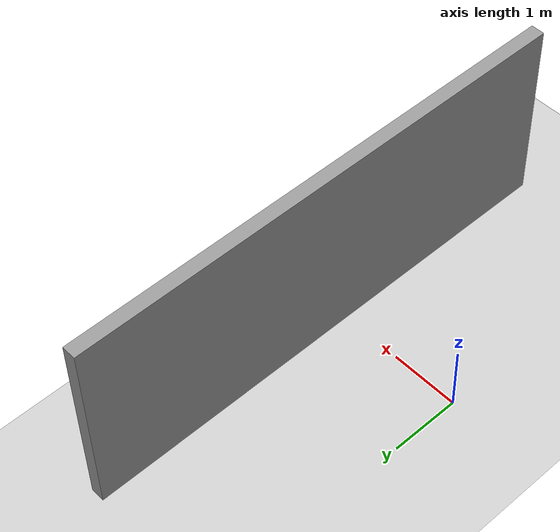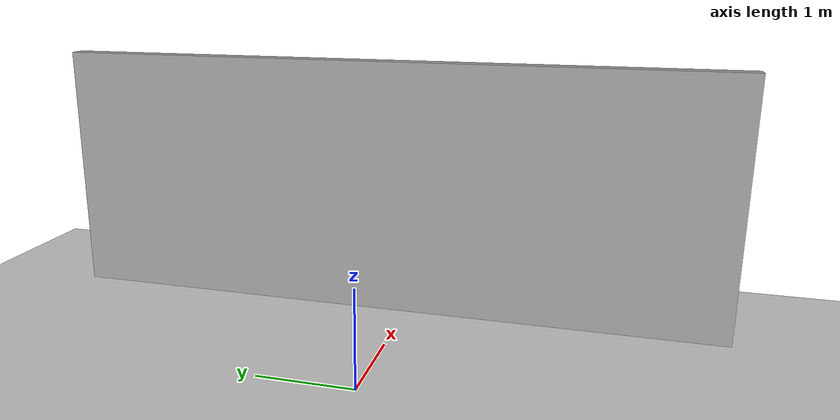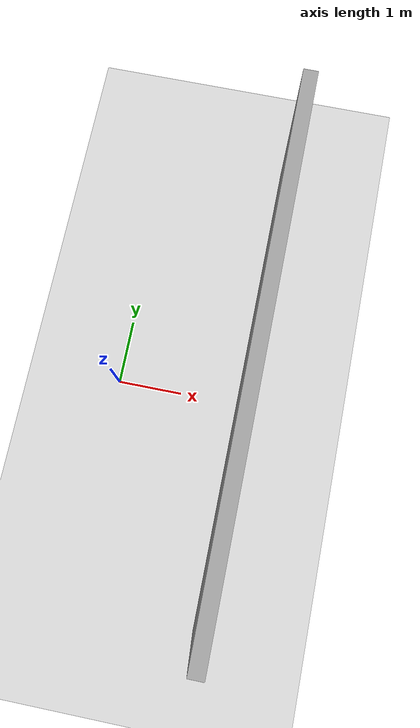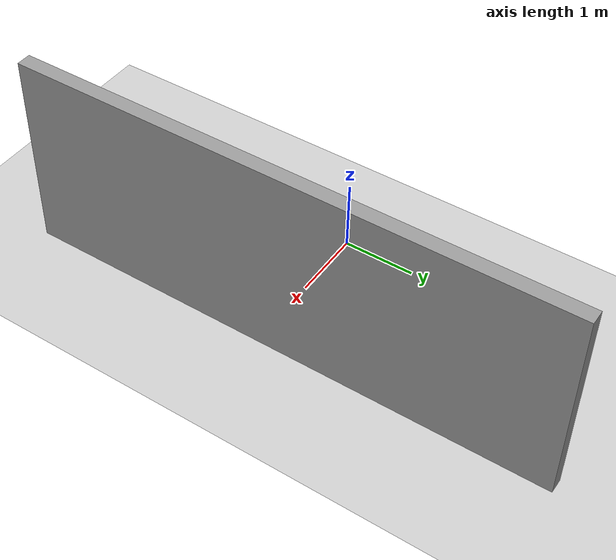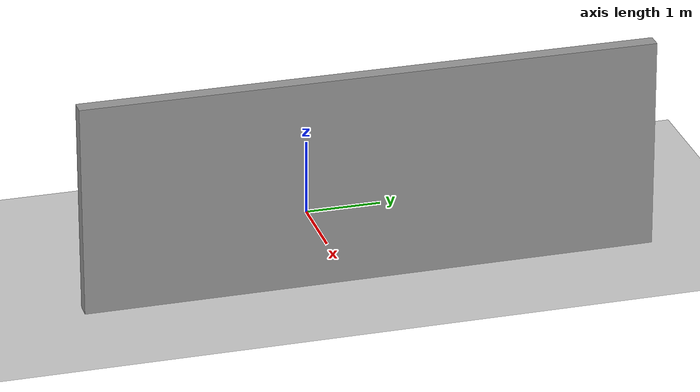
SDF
<?xml version="1.0" ?>
<sdf version="1.5">
  <world name="default">
    <!-- A global light source -->
    <include>
      <uri>model://sun</uri>
    </include>
    <!-- A ground plane -->
    <include>
      <uri>model://ground_plane</uri>
    </include>

    <include>
			<pose>2 0.3 0.0 0.0 0.0 -1.57</pose>
      <uri>model://grey_wall</uri>
    </include>

    <physics name='default_physics' default='0' type='ode'>
      <gravity>0 0 -9.8066</gravity>
      <ode>
        <solver>
          <type>quick</type>
          <iters>10</iters>
          <sor>1.3</sor>
          <use_dynamic_moi_rescaling>0</use_dynamic_moi_rescaling>
        </solver>
        <constraints>
          <cfm>0</cfm>
          <erp>0.2</erp>
          <contact_max_correcting_vel>100</contact_max_correcting_vel>
          <contact_surface_layer>0.001</contact_surface_layer>
        </constraints>
      </ode>
      <max_step_size>0.004</max_step_size>
      <real_time_factor>1</real_time_factor>
      <real_time_update_rate>250</real_time_update_rate>
      <magnetic_field>6.0e-6 2.3e-5 -4.2e-5</magnetic_field>
    </physics>
  </world>
</sdf>

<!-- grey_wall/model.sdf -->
<sdf version="1.5">
  <model name="grey_wall">
    <static>true</static>
    <link name="link">
      <pose>0 0 1.4 0 0 0</pose>
      <collision name="collision">
        <geometry>
          <box>
            <size>7.5 0.2 2.8</size>
          </box>
        </geometry>
      </collision>
      <visual name="visual">
        <cast_shadows>false</cast_shadows>
        <geometry>
          <box>
            <size>7.5 0.2 2.8</size>
          </box>
        </geometry>
        <material>
          <script>
            <uri>model://grey_wall/materials/scripts</uri>
            <uri>model://grey_wall/materials/textures</uri>
            <name>vrc/grey_wall</name>
          </script>
        </material>
      </visual>
    </link>
  </model>
</sdf>
